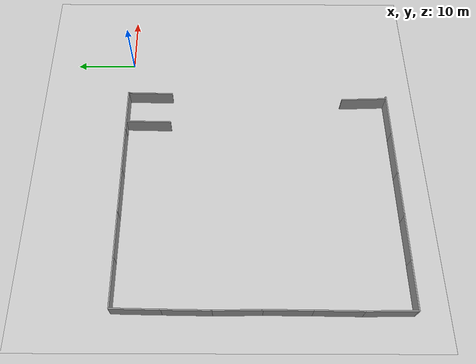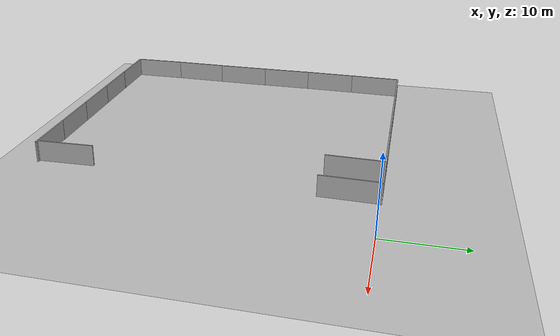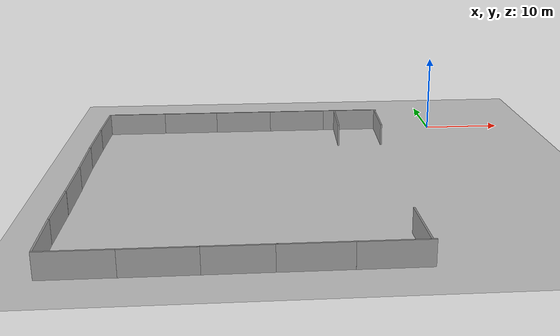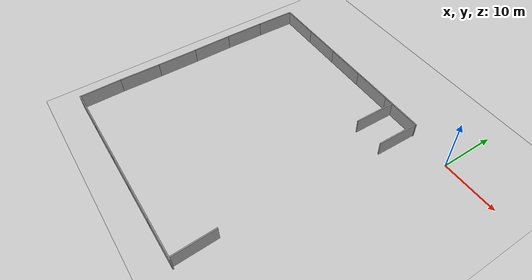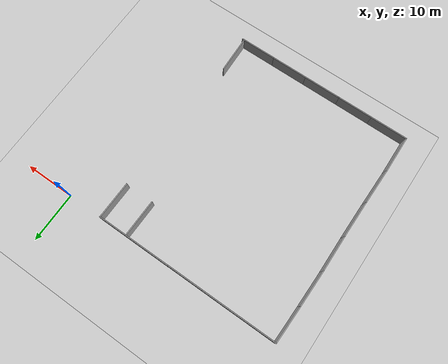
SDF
<sdf version="1.7">
 <world name="default">
  <model name="ground_plane">
   <static>1</static>
   <link name="link">
    <collision name="collision">
     <geometry><plane><normal>0 0 1</normal><size>100 100</size></plane></geometry>
     <surface><friction><ode><mu>100</mu><mu2>50</mu2></ode></friction></surface>
    </collision>
    <visual name="visual">
     <cast_shadows>0</cast_shadows>
     <geometry><plane><normal>0 0 1</normal><size>100 100</size></plane></geometry>
     <material>
      <script><uri>file://media/materials/scripts/gazebo.material</uri><name>Gazebo/Grey</name></script>
     </material>
    </visual>
   </link>
  </model>
  <model name="grey_wall_2">
   <static>1</static>
   <link name="link">
    <pose>0 0 1.4 0 -0 0</pose>
    <collision name="collision"><geometry><box><size>7.5 0.2 2.8</size></box></geometry></collision>
    <visual name="visual">
     <cast_shadows>0</cast_shadows>
     <geometry><box><size>7.5 0.2 2.8</size></box></geometry>
     <material>
      <script>
       <uri>model://grey_wall/materials/scripts</uri>
       <uri>model://grey_wall/materials/textures</uri>
       <name>vrc/grey_wall</name>
      </script>
     </material>
    </visual>
   </link>
   <pose>-11.3103 0.075244 0 0 -0 0</pose>
  </model>
  <model name="grey_wall_3">
   <static>1</static>
   <link name="link">
    <pose>0 0 1.4 0 -0 0</pose>
    <collision name="collision"><geometry><box><size>7.5 0.2 2.8</size></box></geometry></collision>
    <visual name="visual">
     <cast_shadows>0</cast_shadows>
     <geometry><box><size>7.5 0.2 2.8</size></box></geometry>
     <material>
      <script>
       <uri>model://grey_wall/materials/scripts</uri>
       <uri>model://grey_wall/materials/textures</uri>
       <name>vrc/grey_wall</name>
      </script>
     </material>
    </visual>
   </link>
   <pose>-18.8122 0.079753 0 0 -0 0</pose>
  </model>
  <model name="grey_wall_4">
   <static>1</static>
   <link name="link">
    <pose>0 0 1.4 0 -0 0</pose>
    <collision name="collision"><geometry><box><size>7.5 0.2 2.8</size></box></geometry></collision>
    <visual name="visual">
     <cast_shadows>0</cast_shadows>
     <geometry><box><size>7.5 0.2 2.8</size></box></geometry>
     <material>
      <script>
       <uri>model://grey_wall/materials/scripts</uri>
       <uri>model://grey_wall/materials/textures</uri>
       <name>vrc/grey_wall</name>
      </script>
     </material>
    </visual>
   </link>
   <pose>-26.2991 0.06013 0 0 -0 0</pose>
  </model>
  <model name="grey_wall_5">
   <static>1</static>
   <link name="link">
    <pose>0 0 1.4 0 -0 0</pose>
    <collision name="collision"><geometry><box><size>7.5 0.2 2.8</size></box></geometry></collision>
    <visual name="visual">
     <cast_shadows>0</cast_shadows>
     <geometry><box><size>7.5 0.2 2.8</size></box></geometry>
     <material>
      <script>
       <uri>model://grey_wall/materials/scripts</uri>
       <uri>model://grey_wall/materials/textures</uri>
       <name>vrc/grey_wall</name>
      </script>
     </material>
    </visual>
   </link>
   <pose>-33.6204 0.060884 0 0 -0 0</pose>
  </model>
  <model name="grey_wall_6">
   <static>1</static>
   <link name="link">
    <pose>0 0 1.4 0 -0 0</pose>
    <collision name="collision"><geometry><box><size>7.5 0.2 2.8</size></box></geometry></collision>
    <visual name="visual">
     <cast_shadows>0</cast_shadows>
     <geometry><box><size>7.5 0.2 2.8</size></box></geometry>
     <material>
      <script>
       <uri>model://grey_wall/materials/scripts</uri>
       <uri>model://grey_wall/materials/textures</uri>
       <name>vrc/grey_wall</name>
      </script>
     </material>
    </visual>
   </link>
   <pose>-40.9914 0.052124 0 0 -0 0</pose>
  </model>
  <model name="grey_wall_7">
   <static>1</static>
   <link name="link">
    <pose>0 0 1.4 0 -0 0</pose>
    <collision name="collision"><geometry><box><size>7.5 0.2 2.8</size></box></geometry></collision>
    <visual name="visual">
     <cast_shadows>0</cast_shadows>
     <geometry><box><size>7.5 0.2 2.8</size></box></geometry>
     <material>
      <script>
       <uri>model://grey_wall/materials/scripts</uri>
       <uri>model://grey_wall/materials/textures</uri>
       <name>vrc/grey_wall</name>
      </script>
     </material>
    </visual>
   </link>
   <pose>-44.9496 -10.9203 0 0 0 -1.58488</pose>
  </model>
  <model name="grey_wall_8">
   <static>1</static>
   <link name="link">
    <pose>0 0 1.4 0 -0 0</pose>
    <collision name="collision"><geometry><box><size>7.5 0.2 2.8</size></box></geometry></collision>
    <visual name="visual">
     <cast_shadows>0</cast_shadows>
     <geometry><box><size>7.5 0.2 2.8</size></box></geometry>
     <material>
      <script>
       <uri>model://grey_wall/materials/scripts</uri>
       <uri>model://grey_wall/materials/textures</uri>
       <name>vrc/grey_wall</name>
      </script>
     </material>
    </visual>
   </link>
   <pose>-44.9397 -25.3907 0 0 0 -1.57569</pose>
  </model>
  <model name="grey_wall_9">
   <static>1</static>
   <link name="link">
    <pose>0 0 1.4 0 -0 0</pose>
    <collision name="collision"><geometry><box><size>7.5 0.2 2.8</size></box></geometry></collision>
    <visual name="visual">
     <cast_shadows>0</cast_shadows>
     <geometry><box><size>7.5 0.2 2.8</size></box></geometry>
     <material>
      <script>
       <uri>model://grey_wall/materials/scripts</uri>
       <uri>model://grey_wall/materials/textures</uri>
       <name>vrc/grey_wall</name>
      </script>
     </material>
    </visual>
   </link>
   <pose>-44.8309 -3.63413 0 0 0 -1.59164</pose>
  </model>
  <model name="grey_wall_10">
   <static>1</static>
   <link name="link">
    <pose>0 0 1.4 0 -0 0</pose>
    <collision name="collision"><geometry><box><size>7.5 0.2 2.8</size></box></geometry></collision>
    <visual name="visual">
     <cast_shadows>0</cast_shadows>
     <geometry><box><size>7.5 0.2 2.8</size></box></geometry>
     <material>
      <script>
       <uri>model://grey_wall/materials/scripts</uri>
       <uri>model://grey_wall/materials/textures</uri>
       <name>vrc/grey_wall</name>
      </script>
     </material>
    </visual>
   </link>
   <pose>-44.96 -18.1413 0 0 0 -1.56302</pose>
  </model>
  <model name="grey_wall_11">
   <static>1</static>
   <link name="link">
    <pose>0 0 1.4 0 -0 0</pose>
    <collision name="collision"><geometry><box><size>7.5 0.2 2.8</size></box></geometry></collision>
    <visual name="visual">
     <cast_shadows>0</cast_shadows>
     <geometry><box><size>7.5 0.2 2.8</size></box></geometry>
     <material>
      <script>
       <uri>model://grey_wall/materials/scripts</uri>
       <uri>model://grey_wall/materials/textures</uri>
       <name>vrc/grey_wall</name>
      </script>
     </material>
    </visual>
   </link>
   <pose>-45.0177 -32.7999 0 0 -0 1.55716</pose>
  </model>
  <model name="grey_wall_12">
   <static>1</static>
   <link name="link">
    <pose>0 0 1.4 0 -0 0</pose>
    <collision name="collision"><geometry><box><size>7.5 0.2 2.8</size></box></geometry></collision>
    <visual name="visual">
     <cast_shadows>0</cast_shadows>
     <geometry><box><size>7.5 0.2 2.8</size></box></geometry>
     <material>
      <script>
       <uri>model://grey_wall/materials/scripts</uri>
       <uri>model://grey_wall/materials/textures</uri>
       <name>vrc/grey_wall</name>
      </script>
     </material>
    </visual>
   </link>
   <pose>-45.0243 -40.0833 0 0 0 -1.5578</pose>
  </model>
  <model name="grey_wall_13">
   <static>1</static>
   <link name="link">
    <pose>0 0 1.4 0 -0 0</pose>
    <collision name="collision"><geometry><box><size>7.5 0.2 2.8</size></box></geometry></collision>
    <visual name="visual">
     <cast_shadows>0</cast_shadows>
     <geometry><box><size>7.5 0.2 2.8</size></box></geometry>
     <material>
      <script>
       <uri>model://grey_wall/materials/scripts</uri>
       <uri>model://grey_wall/materials/textures</uri>
       <name>vrc/grey_wall</name>
      </script>
     </material>
    </visual>
   </link>
   <pose>-41.3239 -43.9219 0 0 -0 0</pose>
  </model>
  <model name="grey_wall_14">
   <static>1</static>
   <link name="link">
    <pose>0 0 1.4 0 -0 0</pose>
    <collision name="collision"><geometry><box><size>7.5 0.2 2.8</size></box></geometry></collision>
    <visual name="visual">
     <cast_shadows>0</cast_shadows>
     <geometry><box><size>7.5 0.2 2.8</size></box></geometry>
     <material>
      <script>
       <uri>model://grey_wall/materials/scripts</uri>
       <uri>model://grey_wall/materials/textures</uri>
       <name>vrc/grey_wall</name>
      </script>
     </material>
    </visual>
   </link>
   <pose>-33.8425 -43.9356 0 0 -0 0</pose>
  </model>
  <model name="grey_wall_15">
   <static>1</static>
   <link name="link">
    <pose>0 0 1.4 0 -0 0</pose>
    <collision name="collision"><geometry><box><size>7.5 0.2 2.8</size></box></geometry></collision>
    <visual name="visual">
     <cast_shadows>0</cast_shadows>
     <geometry><box><size>7.5 0.2 2.8</size></box></geometry>
     <material>
      <script>
       <uri>model://grey_wall/materials/scripts</uri>
       <uri>model://grey_wall/materials/textures</uri>
       <name>vrc/grey_wall</name>
      </script>
     </material>
    </visual>
   </link>
   <pose>-26.7796 -43.9342 0 0 -0 0</pose>
  </model>
  <model name="grey_wall_16">
   <static>1</static>
   <link name="link">
    <pose>0 0 1.4 0 -0 0</pose>
    <collision name="collision"><geometry><box><size>7.5 0.2 2.8</size></box></geometry></collision>
    <visual name="visual">
     <cast_shadows>0</cast_shadows>
     <geometry><box><size>7.5 0.2 2.8</size></box></geometry>
     <material>
      <script>
       <uri>model://grey_wall/materials/scripts</uri>
       <uri>model://grey_wall/materials/textures</uri>
       <name>vrc/grey_wall</name>
      </script>
     </material>
    </visual>
   </link>
   <pose>-19.505 -43.9367 0 0 -0 0</pose>
  </model>
  <model name="grey_wall_17">
   <static>1</static>
   <link name="link">
    <pose>0 0 1.4 0 -0 0</pose>
    <collision name="collision"><geometry><box><size>7.5 0.2 2.8</size></box></geometry></collision>
    <visual name="visual">
     <cast_shadows>0</cast_shadows>
     <geometry><box><size>7.5 0.2 2.8</size></box></geometry>
     <material>
      <script>
       <uri>model://grey_wall/materials/scripts</uri>
       <uri>model://grey_wall/materials/textures</uri>
       <name>vrc/grey_wall</name>
      </script>
     </material>
    </visual>
   </link>
   <pose>-12.133 -43.9467 0 0 -0 0</pose>
  </model>
  <model name="grey_wall_0_clone_1">
   <static>1</static>
   <link name="link">
    <pose>0 0 1.4 0 -0 0</pose>
    <collision name="collision"><geometry><box><size>7.5 0.2 2.8</size></box></geometry></collision>
    <visual name="visual">
     <cast_shadows>0</cast_shadows>
     <geometry><box><size>7.5 0.2 2.8</size></box></geometry>
     <material>
      <script>
       <uri>model://grey_wall/materials/scripts</uri>
       <uri>model://grey_wall/materials/textures</uri>
       <name>vrc/grey_wall</name>
      </script>
     </material>
    </visual>
   </link>
   <pose>-8.9642 -40.0993 0 0 0 -1.53779</pose>
  </model>
  <model name="grey_wall_9_clone">
   <static>1</static>
   <link name="link">
    <pose>0 0 1.4 0 -0 0</pose>
    <collision name="collision"><geometry><box><size>7.5 0.2 2.8</size></box></geometry></collision>
    <visual name="visual">
     <cast_shadows>0</cast_shadows>
     <geometry><box><size>7.5 0.2 2.8</size></box></geometry>
     <material>
      <script>
       <uri>model://grey_wall/materials/scripts</uri>
       <uri>model://grey_wall/materials/textures</uri>
       <name>vrc/grey_wall</name>
      </script>
     </material>
    </visual>
   </link>
   <pose>-7.82082 -3.70591 0 0 0 -1.59164</pose>
  </model>
  <model name="grey_wall_9_clone_0">
   <static>1</static>
   <link name="link">
    <pose>0 0 1.4 0 -0 0</pose>
    <collision name="collision"><geometry><box><size>7.5 0.2 2.8</size></box></geometry></collision>
    <visual name="visual">
     <cast_shadows>0</cast_shadows>
     <geometry><box><size>7.5 0.2 2.8</size></box></geometry>
     <material>
      <script>
       <uri>model://grey_wall/materials/scripts</uri>
       <uri>model://grey_wall/materials/textures</uri>
       <name>vrc/grey_wall</name>
      </script>
     </material>
    </visual>
   </link>
   <pose>-13.5441 -3.6438 0 0 0 -1.59164</pose>
  </model>
 </world>
</sdf>
